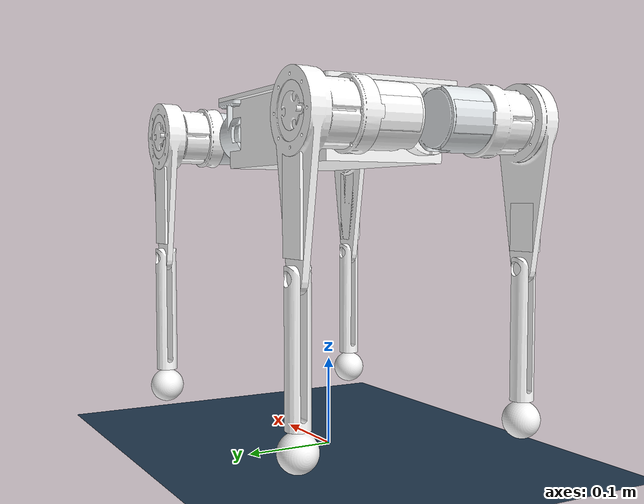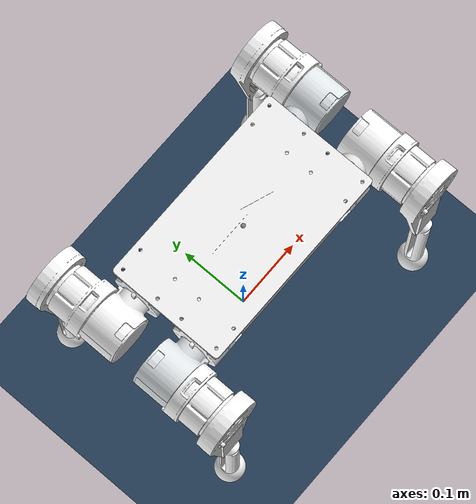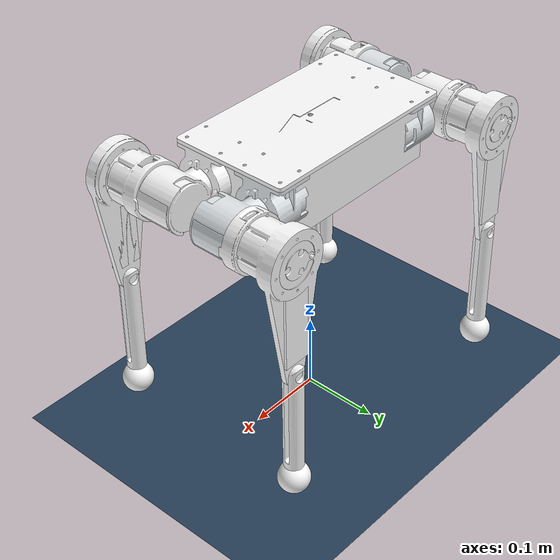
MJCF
<mujoco model="dog scene">
  <include file="dog_V2.xml" />

  <statistic center="0 0 0.1" extent="0.8"/>

  <visual>
    <headlight diffuse="0.6 0.6 0.6" ambient="0.3 0.3 0.3" specular="0 0 0"/>
    <rgba haze="0.15 0.25 0.35 1"/>
    <global azimuth="-130" elevation="-20"/>
  </visual>

  <asset>
    <texture type="skybox" builtin="gradient" rgb1="0.3 0.5 0.7" rgb2="0 0 0" width="512" height="3072"/>
    <texture type="2d" name="groundplane" builtin="checker" mark="edge" rgb1="0.2 0.3 0.4" rgb2="0.1 0.2 0.3"
      markrgb="0.8 0.8 0.8" width="300" height="300"/>
    <material name="groundplane" texture="groundplane" texuniform="true" texrepeat="5 5" reflectance="0.2"/>
  </asset>

  <worldbody>
    <light pos="0 0 1.5" dir="0 0 -1" directional="true"/>
    <geom name="floor" size="0 0 0.05" type="plane" material="groundplane" friction="1. 0.05 0.001"/>

  </worldbody>
</mujoco>

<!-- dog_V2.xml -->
<mujoco model="000">
  <compiler angle="radian" meshdir="../meshes/"/>

  <asset>
    <mesh name="base_link" file="base_link.STL"/>
    <mesh name="Link_ZQ1" file="Link_ZQ1.STL"/>
    <mesh name="Link_ZQ2" file="Link_ZQ2.STL"/>
    <mesh name="Link_ZQ3" file="Link_ZQ3.STL"/>
    <mesh name="Link_ZQ4" file="Link_ZQ4.STL"/>
    <mesh name="Link_ZQ5" file="Link_ZQ5.STL"/>
    <mesh name="Link_ZH1" file="Link_ZH1.STL"/>
    <mesh name="Link_ZH2" file="Link_ZH2.STL"/>
    <mesh name="Link_ZH3" file="Link_ZH3.STL"/>
    <mesh name="Link_ZH4" file="Link_ZH4.STL"/>
    <mesh name="Link_ZH5" file="Link_ZH5.STL"/>
    <mesh name="Link_YQ1" file="Link_YQ1.STL"/>
    <mesh name="Link_YQ2" file="Link_YQ2.STL"/>
    <mesh name="Link_YQ3" file="Link_YQ3.STL"/>
    <mesh name="Link_YQ4" file="Link_YQ4.STL"/>
    <mesh name="Link_YQ5" file="Link_YQ5.STL"/>
    <mesh name="Link_YH1" file="Link_YH1.STL"/>
    <mesh name="Link_YH2" file="Link_YH2.STL"/>
    <mesh name="Link_YH3" file="Link_YH3.STL"/>
    <mesh name="Link_YH4" file="Link_YH4.STL"/>
    <mesh name="Link_YH5" file="Link_YH5.STL"/>
  </asset>

  <worldbody>
    <body name="base_link" pos="0 0 0.4">
      <geom type="mesh" contype="0" conaffinity="0" group="1" density="0" rgba="1 1 1 1" mesh="base_link"/>
      <joint name="floating_base_joint" type="free"/>
      <site name="imu" pos="-0.0 0 0." />
      <geom size="0.12 0.07 0.04" pos="0 0 -0.04" type="box" rgba="1 1 1 1"/>
      <geom pos="0.113 0.044 0" type="mesh" contype="0" conaffinity="0" group="1" density="0" rgba="0.898039 0.917647 0.929412 1" mesh="Link_ZQ1"/>
      <geom pos="-0.113 0.044 0" type="mesh" contype="0" conaffinity="0" group="1" density="0" rgba="0.898039 0.917647 0.929412 1" mesh="Link_ZH1"/>
      <geom pos="0.113 -0.044 0" type="mesh" contype="0" conaffinity="0" group="1" density="0" rgba="1 1 1 1" mesh="Link_YQ1"/>
      <geom pos="-0.113 -0.044 0" quat="-3.67321e-06 0 0 -1" type="mesh" contype="0" conaffinity="0" group="1" density="0" rgba="1 1 1 1" mesh="Link_YH1"/>
      <body name="Link_ZQ2" pos="0.113 0.044 -0.04">
        <inertial pos="0.0663019 -0.00460558 1.61687e-08" quat="0.500665 0.500655 0.499335 0.499344" mass="0.368364" diaginertia="0.000175167 0.000157091 0.000147643"/>
        <joint name="joint_ZQ2" pos="0 0 0" axis="1 0 0" range="-0.4 0.4" actuatorfrcrange="-12.5 12.5"/>
        <geom type="mesh" contype="0" conaffinity="0" group="1" density="0" rgba="0.898039 0.917647 0.929412 1" mesh="Link_ZQ2"/>
        <geom size="0.03 0.025" pos="0.07 0 0" quat="0.707388 0.706825 0 0" type="cylinder" rgba="0.898039 0.917647 0.929412 1"/>
        <body name="Link_ZQ3" pos="0.067 0 0">
          <inertial pos="-5.91352e-05 0.059451 -0.00768867" quat="0.707354 9.9172e-06 -9.92415e-06 0.706859" mass="0.538002" diaginertia="0.000517655 0.000436232 0.000212184"/>
          <joint name="joint_ZQ3" pos="0 0 0" axis="0 1 0" range="-0.3 2" actuatorfrcrange="-12.5 12.5"/>
          <geom type="mesh" contype="0" conaffinity="0" group="1" density="0" rgba="1 1 1 1" mesh="Link_ZQ3"/>
          <geom size="0.03 0.025" pos="0 0.07 0" quat="0.707388 0.706825 0 0" type="cylinder" rgba="1 1 1 1"/>
          <geom size="0.0175 0.005 0.05" pos="0 0.09 -0.082" type="box" rgba="1 1 1 1"/>
          <body name="Link_ZQ4" pos="0 0.0885 -0.15">
            <inertial pos="-1.46154e-08 3.41698e-07 -0.108034" quat="1 0 0 -9.95816e-05" mass="0.0802946" diaginertia="0.000248142 0.000247115 9.65894e-06"/>
            <joint name="joint_ZQ4" pos="0 0 0" axis="0 1 0" range="-2.7 -0.3" actuatorfrcrange="-12.5 12.5"/>
            <geom type="mesh" contype="0" conaffinity="0" group="1" density="0" rgba="1 1 1 1" mesh="Link_ZQ4"/>
            <geom type="mesh" rgba="1 1 1 1" mesh="Link_ZQ4"/>
            <geom pos="0 0 -0.16" quat="1 0 0 0" type="mesh" contype="0" conaffinity="0" group="1" density="0" rgba="1 1 1 1" mesh="Link_ZQ5"/>
            <geom pos="0 0 -0.16" quat="1 0 0 0" type="mesh" rgba="1 1 1 1" mesh="Link_ZQ5"/>
          </body>
        </body>
      </body>
      <body name="Link_ZH2" pos="-0.113 0.044 -0.04">
        <inertial pos="-0.0663019 -0.00460559 -1.58356e-08" quat="0.499344 0.499335 0.500655 0.500665" mass="0.368364" diaginertia="0.000175167 0.000157091 0.000147643"/>
        <joint name="joint_ZH2" pos="0 0 0" axis="1 0 0" range="-0.4 0.4" actuatorfrcrange="-12.5 12.5"/>
        <geom type="mesh" contype="0" conaffinity="0" group="1" density="0" rgba="1 1 1 1" mesh="Link_ZH2"/>
        <geom size="0.03 0.025" pos="-0.07 0 0" quat="0.707388 0.706825 0 0" type="cylinder" rgba="1 1 1 1"/>
        <body name="Link_ZH3" pos="-0.067 0 0">
          <inertial pos="-7.60103e-05 0.059451 -0.00768873" quat="0.707151 9.8267e-06 -9.82792e-06 0.707063" mass="0.538002" diaginertia="0.000517655 0.000436232 0.000212184"/>
          <joint name="joint_ZH3" pos="0 0 0" axis="0 1 0" range="-0.3 2" actuatorfrcrange="-12.5 12.5"/>
          <geom type="mesh" contype="0" conaffinity="0" group="1" density="0" rgba="1 1 1 1" mesh="Link_ZH3"/>
          <geom size="0.03 0.025" pos="0 0.07 0" quat="0.707388 0.706825 0 0" type="cylinder" rgba="1 1 1 1"/>
          <geom size="0.0175 0.005 0.05" pos="0 0.09 -0.082" type="box" rgba="1 1 1 1"/>
          <body name="Link_ZH4" pos="0 0.0885 -0.15">
            <inertial pos="-1.46154e-08 3.41698e-07 -0.108034" quat="1 0 0 -9.95816e-05" mass="0.0802946" diaginertia="0.000248142 0.000247115 9.65894e-06"/>
            <joint name="joint_ZH4" pos="0 0 0" axis="0 1 0" range="-2.7 -0.3" actuatorfrcrange="-12.5 12.5"/>
            <geom type="mesh" contype="0" conaffinity="0" group="1" density="0" rgba="1 1 1 1" mesh="Link_ZH4"/>
            <geom type="mesh" rgba="1 1 1 1" mesh="Link_ZH4"/>
            <geom pos="0 0 -0.16" quat="1 0 0 0" type="mesh" contype="0" conaffinity="0" group="1" density="0" rgba="1 1 1 1" mesh="Link_ZH5"/>
            <geom pos="0 0 -0.16" quat="1 0 0 0" type="mesh" rgba="1 1 1 1" mesh="Link_ZH5"/>
          </body>
        </body>
      </body>
      <body name="Link_YQ2" pos="0.113 -0.044 -0.04">
        <inertial pos="0.0663019 0.00460559 -1.58356e-08" quat="0.499335 0.499344 0.500665 0.500655" mass="0.368364" diaginertia="0.000175167 0.000157091 0.000147643"/>
        <joint name="joint_YQ2" pos="0 0 0" axis="1 0 0" range="-0.4 0.4" actuatorfrcrange="-12.5 12.5"/>
        <geom type="mesh" contype="0" conaffinity="0" group="1" density="0" rgba="1 1 1 1" mesh="Link_YQ2"/>
        <geom size="0.03 0.025" pos="0.07 0 0" quat="0.707388 0.706825 0 0" type="cylinder" rgba="1 1 1 1"/>
        <body name="Link_YQ3" pos="0.067 0 0">
          <inertial pos="-5.85993e-05 -0.0594509 -0.00768937" quat="0.706858 8.2122e-06 -8.20643e-06 0.707355" mass="0.538004" diaginertia="0.000517683 0.000436261 0.000212184"/>
          <joint name="joint_YQ3" pos="0 0 0" axis="0 1 0" range="-0.3 2" actuatorfrcrange="-12.5 12.5"/>
          <geom type="mesh" contype="0" conaffinity="0" group="1" density="0" rgba="1 1 1 1" mesh="Link_YQ3"/>
          <geom size="0.03 0.025" pos="0 -0.07 0" quat="0.707388 0.706825 0 0" type="cylinder" rgba="1 1 1 1"/>
          <geom size="0.0175 0.005 0.05" pos="0 -0.09 -0.082" type="box" rgba="1 1 1 1"/>
          <body name="Link_YQ4" pos="0 -0.0885 -0.15">
            <inertial pos="-1.46154e-08 3.41698e-07 -0.108034" quat="1 0 0 -9.95816e-05" mass="0.0802946" diaginertia="0.000248142 0.000247115 9.65894e-06"/>
            <joint name="joint_YQ4" pos="0 0 0" axis="0 1 0" range="-2.7 -0.3" actuatorfrcrange="-12.5 12.5"/>
            <geom type="mesh" contype="0" conaffinity="0" group="1" density="0" rgba="1 1 1 1" mesh="Link_YQ4"/>
            <geom type="mesh" rgba="1 1 1 1" mesh="Link_YQ4"/>
            <geom pos="0 0 -0.16" quat="1 0 0 0" type="mesh" contype="0" conaffinity="0" group="1" density="0" rgba="1 1 1 1" mesh="Link_YQ5"/>
            <geom pos="0 0 -0.16" quat="1 0 0 0" type="mesh" rgba="1 1 1 1" mesh="Link_YQ5"/>
          </body>
        </body>
      </body>
      <body name="Link_YH2" pos="-0.113 -0.044 -0.04" quat="-2.59735e-06 0.707107 -2.59735e-06 -0.707107">
        <inertial pos="-1.58357e-08 -0.00460558 0.0663019" quat="0.707106 0.000927553 -0.00094045 0.707106" mass="0.368364" diaginertia="0.000175167 0.000157091 0.000147643"/>
        <joint name="joint_YH2" pos="0 0 0" axis="0 0 -1" range="-0.4 0.4" actuatorfrcrange="-12.5 12.5"/>
        <geom type="mesh" contype="0" conaffinity="0" group="1" density="0" rgba="0.898039 0.917647 0.929412 1" mesh="Link_YH2"/>
        <geom size="0.03 0.025" pos="0 0 0.07" quat="0.707388 0.706825 0 0" type="cylinder" rgba="0.898039 0.917647 0.929412 1"/>
        <body name="Link_YH3" pos="0 0 0.067" quat="0.5 -0.5 -0.5 -0.5">
          <inertial pos="7.5716e-05 0.00768936 0.0594509" quat="0.499975 0.499963 -0.500025 0.500037" mass="0.538004" diaginertia="0.000517683 0.000436261 0.000212184"/>
          <joint name="joint_YH3" pos="0 0 0" axis="0 0 -1" range="-0.3 2" actuatorfrcrange="-12.5 12.5"/>
          <geom type="mesh" contype="0" conaffinity="0" group="1" density="0" rgba="1 1 1 1" mesh="Link_YH3"/>
          <geom size="0.03 0.025" pos="0 0 0.07" type="cylinder" rgba="1 1 1 1"/>
          <geom size="0.0175 0.005 0.05" pos="0 0.082 0.09" quat="0.707388 0.706825 0 0" type="box" rgba="1 1 1 1"/>
          <body name="Link_YH4" pos="0 0.15 0.0885" quat="-2.59734e-06 2.59735e-06 -0.707108 0.707105">
            <inertial pos="-1.46154e-08 3.41698e-07 -0.108034" quat="1 0 0 -9.95816e-05" mass="0.0802946" diaginertia="0.000248142 0.000247115 9.65894e-06"/>
            <joint name="joint_YH4" pos="0 0 0" axis="0 1 0" range="-2.7 -0.3" actuatorfrcrange="-12.5 12.5"/>
            <geom type="mesh" contype="0" conaffinity="0" group="1" density="0" rgba="1 1 1 1" mesh="Link_YH4"/>
            <geom type="mesh" rgba="1 1 1 1" mesh="Link_YH4"/>
            <geom pos="0 0 -0.16" quat="1 0 0 0" type="mesh" contype="0" conaffinity="0" group="1" density="0" rgba="1 1 1 1" mesh="Link_YH5"/>
            <geom pos="0 0 -0.16" quat="1 0 0 0" type="mesh" rgba="1 1 1 1" mesh="Link_YH5"/>
          </body>
        </body>
      </body>
    </body>
  </worldbody>

  <actuator>
    <motor name="FL1" joint="joint_ZQ2"/>
    <motor name="FR1" joint="joint_YQ2"/>
    <motor name="RL1" joint="joint_ZH2"/>
    <motor name="RR1" joint="joint_YH2"/>
    <motor name="FL2" joint="joint_ZQ3"/>
    <motor name="FR2" joint="joint_YQ3"/>
    <motor name="RL2" joint="joint_ZH3"/>
    <motor name="RR2" joint="joint_YH3"/>
    <motor name="FL3" joint="joint_ZQ4"/>
    <motor name="FR3" joint="joint_YQ4"/>
    <motor name="RL3" joint="joint_ZH4"/>
    <motor name="RR3" joint="joint_YH4"/>
  </actuator>

  <sensor>
    <jointpos name="FR_hip_pos" joint="joint_YQ2" />
    <jointpos name="FR_thigh_pos" joint="joint_YQ3" />
    <jointpos name="FR_calf_pos" joint="joint_YQ4" />
    <jointpos name="FL_hip_pos" joint="joint_ZQ2" />
    <jointpos name="FL_thigh_pos" joint="joint_ZQ3" />
    <jointpos name="FL_calf_pos" joint="joint_ZQ4" />
    <jointpos name="RR_hip_pos" joint="joint_YH2" />
    <jointpos name="RR_thigh_pos" joint="joint_YH3" />
    <jointpos name="RR_calf_pos" joint="joint_YH4" />
    <jointpos name="RL_hip_pos" joint="joint_ZH2" />
    <jointpos name="RL_thigh_pos" joint="joint_ZH3" />
    <jointpos name="RL_calf_pos" joint="joint_ZH4" />

    <jointvel name="FR_hip_vel" joint="joint_YQ2" />
    <jointvel name="FR_thigh_vel" joint="joint_YQ3" />
    <jointvel name="FR_calf_vel" joint="joint_YQ4" />
    <jointvel name="FL_hip_vel" joint="joint_ZQ2" />
    <jointvel name="FL_thigh_vel" joint="joint_ZQ3" />
    <jointvel name="FL_calf_vel" joint="joint_ZQ4" />
    <jointvel name="RR_hip_vel" joint="joint_YH2" />
    <jointvel name="RR_thigh_vel" joint="joint_YH3" />
    <jointvel name="RR_calf_vel" joint="joint_YH4" />
    <jointvel name="RL_hip_vel" joint="joint_ZH2" />
    <jointvel name="RL_thigh_vel" joint="joint_ZH3" />
    <jointvel name="RL_calf_vel" joint="joint_ZH4" />

    <jointactuatorfrc name="FR_hip_torque" joint="joint_YQ2" noise="0.01" />
    <jointactuatorfrc name="FR_thigh_torque" joint="joint_YQ3" noise="0.01" />
    <jointactuatorfrc name="FR_calf_torque" joint="joint_YQ4" noise="0.01" />
    <jointactuatorfrc name="FL_hip_torque" joint="joint_ZQ2" noise="0.01" />
    <jointactuatorfrc name="FL_thigh_torque" joint="joint_ZQ3" noise="0.01" />
    <jointactuatorfrc name="FL_calf_torque" joint="joint_ZQ4" noise="0.01" />
    <jointactuatorfrc name="RR_hip_torque" joint="joint_YH2" noise="0.01" />
    <jointactuatorfrc name="RR_thigh_torque" joint="joint_YH3" noise="0.01" />
    <jointactuatorfrc name="RR_calf_torque" joint="joint_YH4" noise="0.01" />
    <jointactuatorfrc name="RL_hip_torque" joint="joint_ZH2" noise="0.01" />
    <jointactuatorfrc name="RL_thigh_torque" joint="joint_ZH3" noise="0.01" />
    <jointactuatorfrc name="RL_calf_torque" joint="joint_ZH4" noise="0.01" />

    <framequat name="imu_quat" objtype="site" objname="imu" />
    <gyro name="imu_gyro" site="imu" />
    <accelerometer name="imu_acc" site="imu" />

    <framepos name="frame_pos" objtype="site" objname="imu" />
    <framelinvel name="frame_vel" objtype="site" objname="imu" />
  </sensor>

</mujoco>
